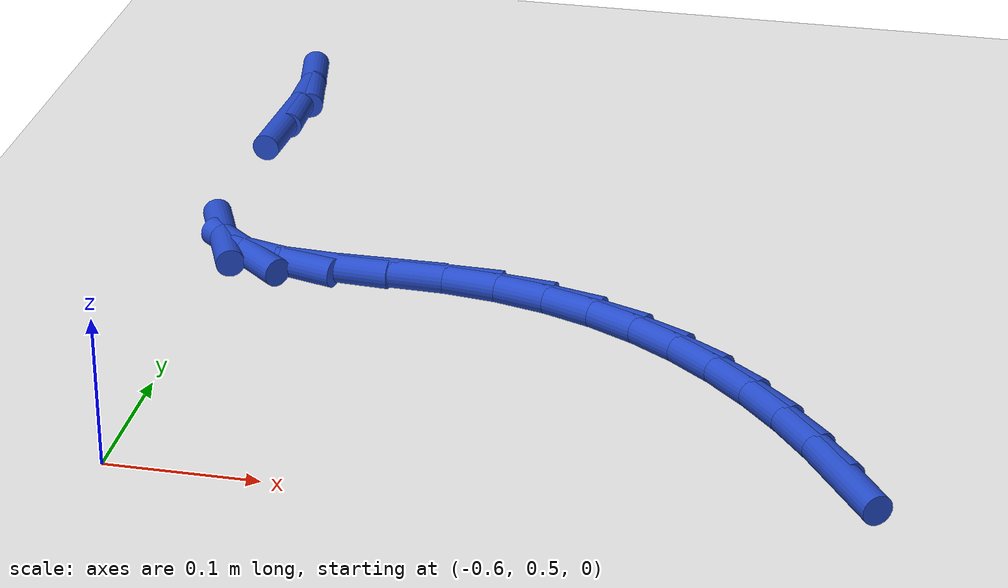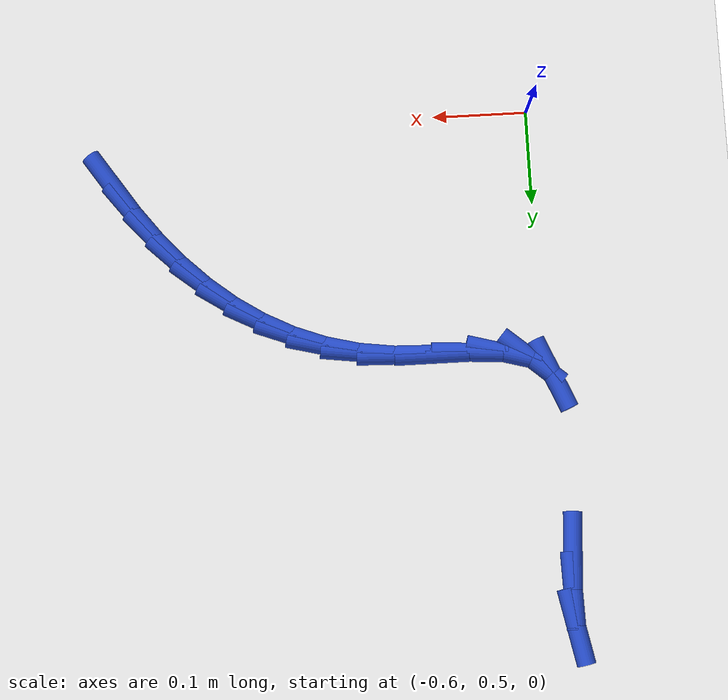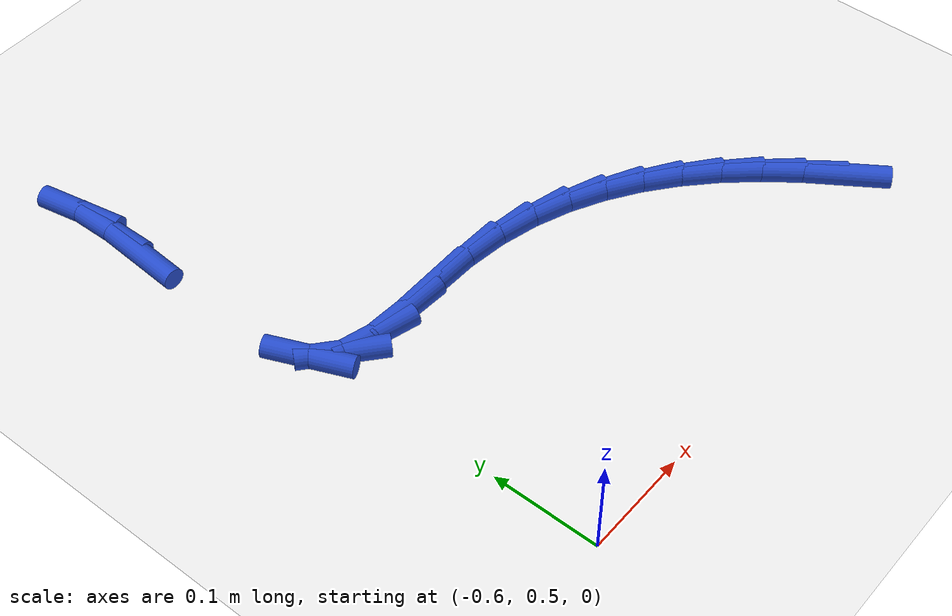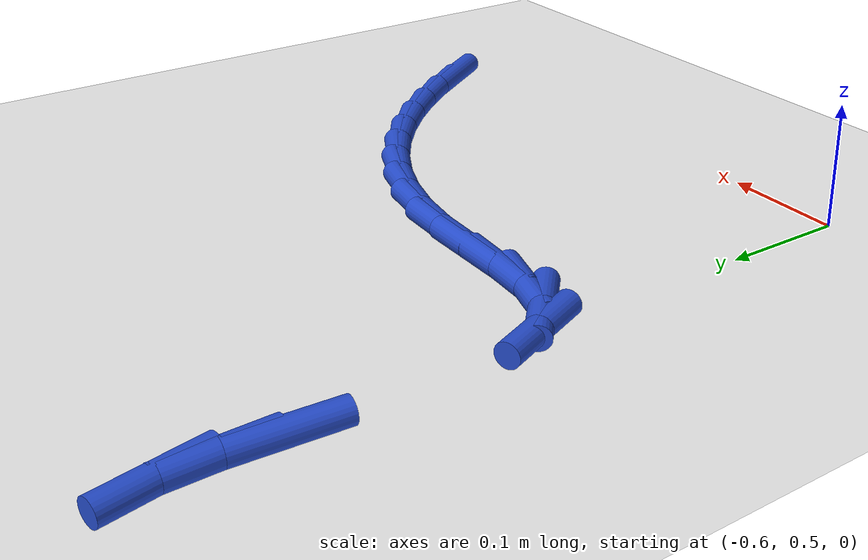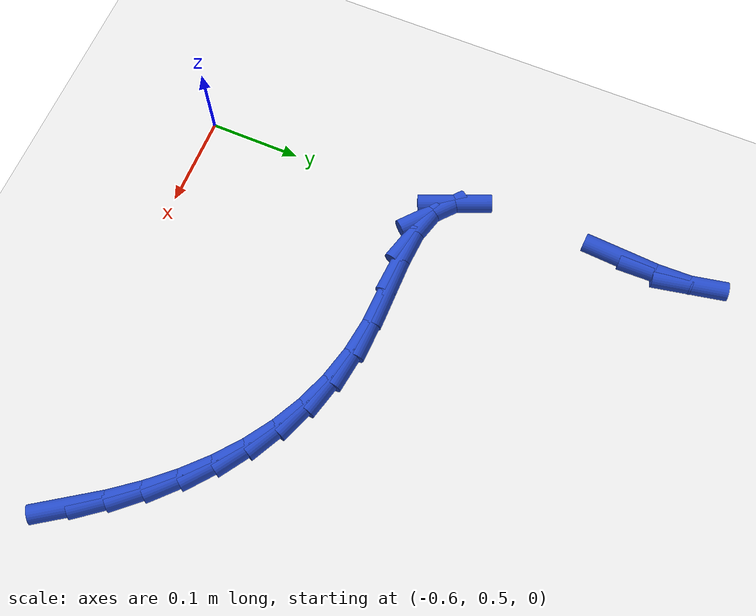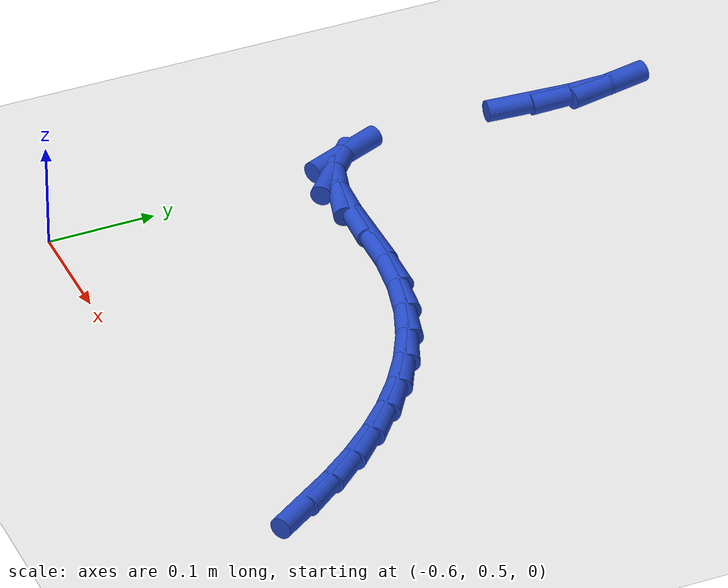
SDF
<sdf version="1.6">
 <world name="default">
  <model name="ground_plane">
   <static>1</static>
   <link name="link">
    <collision name="collision">
     <geometry><plane><normal>0 0 1</normal><size>100 100</size></plane></geometry>
     <surface><friction><ode><mu>100</mu><mu2>50</mu2></ode></friction></surface>
    </collision>
    <visual name="visual">
     <cast_shadows>0</cast_shadows>
     <geometry><plane><normal>0 0 1</normal><size>100 100</size></plane></geometry>
     <material>
      <script><uri>file://media/materials/scripts/gazebo.material</uri><name>Gazebo/WhiteGlow</name></script>
     </material>
    </visual>
   </link>
  </model>
  <model name="line">
   <link name="link_16">
    <pose>-0.1552116735158916 0.5601776184980961 0.01 0 1.57 -0.9789839347264426</pose>
    <collision name="collision">
     <geometry><cylinder><radius>0.01</radius><length>0.08</length></cylinder></geometry>
    </collision>
    <visual name="visual">
     <material>
      <script><name>Gazebo/Blue</name><uri>file://media/materials/scripts/gazebo.material</uri></script>
     </material>
     <geometry><cylinder><radius>0.01</radius><length>0.08</length></cylinder></geometry>
    </visual>
   </link>
   <link name="link_17">
    <pose>-0.1761731888566654 0.5913618234808902 0.01 0 1.57 -0.9149944381178255</pose>
    <collision name="collision">
     <geometry><cylinder><radius>0.01</radius><length>0.08</length></cylinder></geometry>
    </collision>
    <visual name="visual">
     <material>
      <script><name>Gazebo/Blue</name><uri>file://media/materials/scripts/gazebo.material</uri></script>
     </material>
     <geometry><cylinder><radius>0.01</radius><length>0.08</length></cylinder></geometry>
    </visual>
   </link>
   <link name="link_18">
    <pose>-0.19874765211302972 0.6207021737864852 0.01 0 1.57 -0.8433272272003393</pose>
    <collision name="collision">
     <geometry><cylinder><radius>0.01</radius><length>0.08</length></cylinder></geometry>
    </collision>
    <visual name="visual">
     <material>
      <script><name>Gazebo/Blue</name><uri>file://media/materials/scripts/gazebo.material</uri></script>
     </material>
     <geometry><cylinder><radius>0.01</radius><length>0.08</length></cylinder></geometry>
    </visual>
   </link>
   <link name="link_19">
    <pose>-0.2229914384700139 0.6479310639677045 0.01 0 1.57 -0.7633695499647677</pose>
    <collision name="collision">
     <geometry><cylinder><radius>0.01</radius><length>0.08</length></cylinder></geometry>
    </collision>
    <visual name="visual">
     <material>
      <script><name>Gazebo/Blue</name><uri>file://media/materials/scripts/gazebo.material</uri></script>
     </material>
     <geometry><cylinder><radius>0.01</radius><length>0.08</length></cylinder></geometry>
    </visual>
   </link>
   <link name="link_20">
    <pose>-0.24896092311264773 0.6727808885773727 0.01 0 1.57 -0.6747828435483268</pose>
    <collision name="collision">
     <geometry><cylinder><radius>0.01</radius><length>0.08</length></cylinder></geometry>
    </collision>
    <visual name="visual">
     <material>
      <script><name>Gazebo/Blue</name><uri>file://media/materials/scripts/gazebo.material</uri></script>
     </material>
     <geometry><cylinder><radius>0.01</radius><length>0.08</length></cylinder></geometry>
    </visual>
   </link>
   <link name="link_21">
    <pose>-0.2767124812259606 0.6949840421683133 0.01 0 1.57 -0.5776896192459179</pose>
    <collision name="collision">
     <geometry><cylinder><radius>0.01</radius><length>0.08</length></cylinder></geometry>
    </collision>
    <visual name="visual">
     <material>
      <script><name>Gazebo/Blue</name><uri>file://media/materials/scripts/gazebo.material</uri></script>
     </material>
     <geometry><cylinder><radius>0.01</radius><length>0.08</length></cylinder></geometry>
    </visual>
   </link>
   <link name="link_22">
    <pose>-0.3063024879949821 0.7142729192933501 0.01 0 1.57 -0.47286827136064236</pose>
    <collision name="collision">
     <geometry><cylinder><radius>0.01</radius><length>0.08</length></cylinder></geometry>
    </collision>
    <visual name="visual">
     <material>
      <script><name>Gazebo/Blue</name><uri>file://media/materials/scripts/gazebo.material</uri></script>
     </material>
     <geometry><cylinder><radius>0.01</radius><length>0.08</length></cylinder></geometry>
    </visual>
   </link>
   <link name="link_23">
    <pose>-0.3377873186047418 0.7303799145053075 0.01 0 1.57 -0.3618871780111352</pose>
    <collision name="collision">
     <geometry><cylinder><radius>0.01</radius><length>0.08</length></cylinder></geometry>
    </collision>
    <visual name="visual">
     <material>
      <script><name>Gazebo/Blue</name><uri>file://media/materials/scripts/gazebo.material</uri></script>
     </material>
     <geometry><cylinder><radius>0.01</radius><length>0.08</length></cylinder></geometry>
    </visual>
   </link>
   <link name="link_24">
    <pose>-0.37122334824026915 0.7430374223570085 0.01 0 1.57 -0.24708897873216454</pose>
    <collision name="collision">
     <geometry><cylinder><radius>0.01</radius><length>0.08</length></cylinder></geometry>
    </collision>
    <visual name="visual">
     <material>
      <script><name>Gazebo/Blue</name><uri>file://media/materials/scripts/gazebo.material</uri></script>
     </material>
     <geometry><cylinder><radius>0.01</radius><length>0.08</length></cylinder></geometry>
    </visual>
   </link>
   <link name="link_25">
    <pose>-0.4066669520865937 0.751977837401278 0.01 0 1.57 -0.1313649384565871</pose>
    <collision name="collision">
     <geometry><cylinder><radius>0.01</radius><length>0.08</length></cylinder></geometry>
    </collision>
    <visual name="visual">
     <material>
      <script><name>Gazebo/Blue</name><uri>file://media/materials/scripts/gazebo.material</uri></script>
     </material>
     <geometry><cylinder><radius>0.01</radius><length>0.08</length></cylinder></geometry>
    </visual>
   </link>
   <link name="link_26">
    <pose>-0.4441745053287452 0.7569335541909392 0.01 0 1.57 -0.027857202016492742</pose>
    <collision name="collision">
     <geometry><cylinder><radius>0.01</radius><length>0.08</length></cylinder></geometry>
    </collision>
    <visual name="visual">
     <material>
      <script><name>Gazebo/Blue</name><uri>file://media/materials/scripts/gazebo.material</uri></script>
     </material>
     <geometry><cylinder><radius>0.01</radius><length>0.08</length></cylinder></geometry>
    </visual>
   </link>
   <link name="link_27">
    <pose>-0.483497100544818 0.7580292551143135 0.01 0 1.57 0.003887102109623575</pose>
    <collision name="collision">
     <geometry><cylinder><radius>0.01</radius><length>0.08</length></cylinder></geometry>
    </collision>
    <visual name="visual">
     <material>
      <script><name>Gazebo/Blue</name><uri>file://media/materials/scripts/gazebo.material</uri></script>
     </material>
     <geometry><cylinder><radius>0.01</radius><length>0.08</length></cylinder></geometry>
    </visual>
   </link>
   <link name="link_28">
    <pose>-0.5224494708221701 0.7578778425110401 0.01 0 1.57 -0.06128359200635334</pose>
    <collision name="collision">
     <geometry><cylinder><radius>0.01</radius><length>0.08</length></cylinder></geometry>
    </collision>
    <visual name="visual">
     <material>
      <script><name>Gazebo/Blue</name><uri>file://media/materials/scripts/gazebo.material</uri></script>
     </material>
     <geometry><cylinder><radius>0.01</radius><length>0.08</length></cylinder></geometry>
    </visual>
   </link>
   <link name="link_29">
    <pose>-0.5580895291692867 0.760064731742652 0.01 0 1.57 -0.26938697486365387</pose>
    <collision name="collision">
     <geometry><cylinder><radius>0.01</radius><length>0.08</length></cylinder></geometry>
    </collision>
    <visual name="visual">
     <material>
      <script><name>Gazebo/Blue</name><uri>file://media/materials/scripts/gazebo.material</uri></script>
     </material>
     <geometry><cylinder><radius>0.01</radius><length>0.08</length></cylinder></geometry>
    </visual>
   </link>
   <link name="link_30">
    <pose>-0.5874734441545285 0.7681775797744445 0.01 0 1.57 -0.7060367075536731</pose>
    <collision name="collision">
     <geometry><cylinder><radius>0.01</radius><length>0.08</length></cylinder></geometry>
    </collision>
    <visual name="visual">
     <material>
      <script><name>Gazebo/Blue</name><uri>file://media/materials/scripts/gazebo.material</uri></script>
     </material>
     <geometry><cylinder><radius>0.01</radius><length>0.08</length></cylinder></geometry>
    </visual>
   </link>
   <link name="link_31">
    <pose>-0.6078645218850702 0.7855642502644155 0.01 0 1.57 -1.1673834614039085</pose>
    <collision name="collision">
     <geometry><cylinder><radius>0.01</radius><length>0.08</length></cylinder></geometry>
    </collision>
    <visual name="visual">
     <material>
      <script><name>Gazebo/Blue</name><uri>file://media/materials/scripts/gazebo.material</uri></script>
     </material>
     <geometry><cylinder><radius>0.01</radius><length>0.08</length></cylinder></geometry>
    </visual>
   </link>
   <link name="link_36">
    <pose>-0.616348121791691 0.9699443794619735 0.01 0 1.57 1.5074822993449497</pose>
    <collision name="collision">
     <geometry><cylinder><radius>0.01</radius><length>0.08</length></cylinder></geometry>
    </collision>
    <visual name="visual">
     <material>
      <script><name>Gazebo/Blue</name><uri>file://media/materials/scripts/gazebo.material</uri></script>
     </material>
     <geometry><cylinder><radius>0.01</radius><length>0.08</length></cylinder></geometry>
    </visual>
   </link>
   <link name="link_37">
    <pose>-0.6137518359064121 1.0108960587002893 0.01 0 1.57 -1.5496068078588994</pose>
    <collision name="collision">
     <geometry><cylinder><radius>0.01</radius><length>0.08</length></cylinder></geometry>
    </collision>
    <visual name="visual">
     <material>
      <script><name>Gazebo/Blue</name><uri>file://media/materials/scripts/gazebo.material</uri></script>
     </material>
     <geometry><cylinder><radius>0.01</radius><length>0.08</length></cylinder></geometry>
    </visual>
   </link>
   <link name="link_38">
    <pose>-0.6145392675295944 1.0480518700658805 0.01 0 1.57 -1.3732643696717592</pose>
    <collision name="collision">
     <geometry><cylinder><radius>0.01</radius><length>0.08</length></cylinder></geometry>
    </collision>
    <visual name="visual">
     <material>
      <script><name>Gazebo/Blue</name><uri>file://media/materials/scripts/gazebo.material</uri></script>
     </material>
     <geometry><cylinder><radius>0.01</radius><length>0.08</length></cylinder></geometry>
    </visual>
   </link>
  </model>
 </world>
</sdf>
